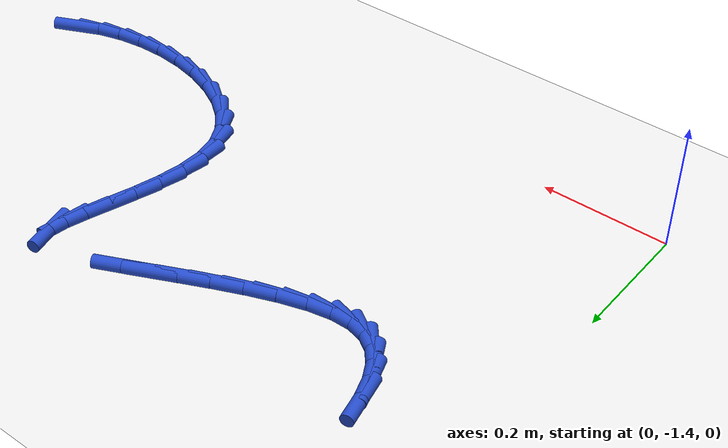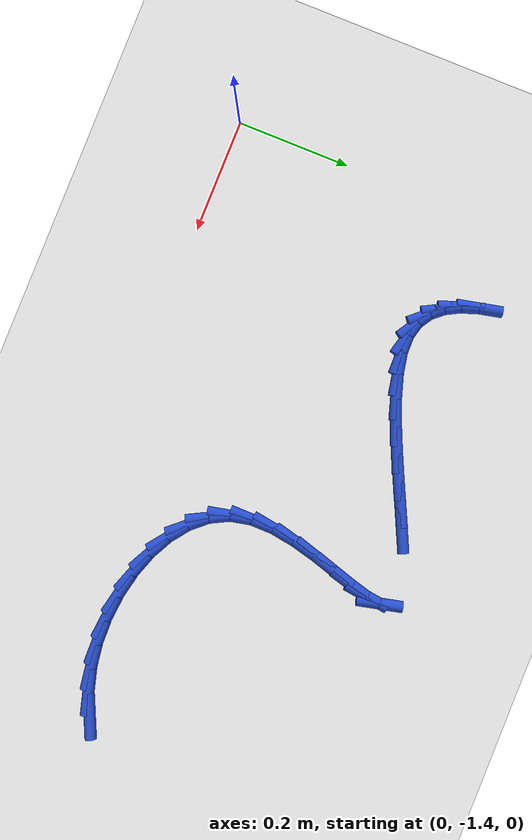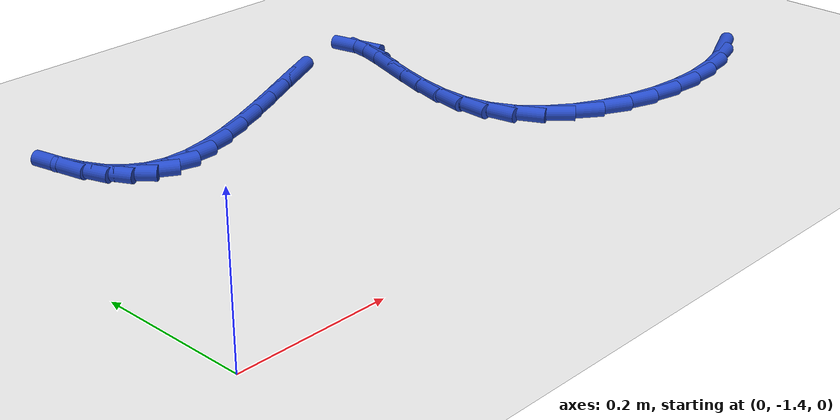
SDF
<sdf version="1.6">
 <world name="default">
  <model name="ground_plane">
   <static>1</static>
   <link name="link">
    <collision name="collision">
     <geometry><plane><normal>0 0 1</normal><size>100 100</size></plane></geometry>
     <surface><friction><ode><mu>100</mu><mu2>50</mu2></ode></friction></surface>
    </collision>
    <visual name="visual">
     <cast_shadows>0</cast_shadows>
     <geometry><plane><normal>0 0 1</normal><size>100 100</size></plane></geometry>
     <material>
      <script><uri>file://media/materials/scripts/gazebo.material</uri><name>Gazebo/WhiteGlow</name></script>
     </material>
    </visual>
   </link>
  </model>
  <model name="line">
   <link name="link_208">
    <pose>1.0401108491345001 -1.257475766100398 0.01 0 1.57 0.4323601124103347</pose>
    <collision name="collision">
     <geometry><cylinder><radius>0.01</radius><length>0.08</length></cylinder></geometry>
    </collision>
    <visual name="visual">
     <material>
      <script><name>Gazebo/Blue</name><uri>file://media/materials/scripts/gazebo.material</uri></script>
     </material>
     <geometry><cylinder><radius>0.01</radius><length>0.08</length></cylinder></geometry>
    </visual>
   </link>
   <link name="link_209">
    <pose>1.0031385572865816 -1.2745377632468415 0.01 0 1.57 0.2753263226925777</pose>
    <collision name="collision">
     <geometry><cylinder><radius>0.01</radius><length>0.08</length></cylinder></geometry>
    </collision>
    <visual name="visual">
     <material>
      <script><name>Gazebo/Blue</name><uri>file://media/materials/scripts/gazebo.material</uri></script>
     </material>
     <geometry><cylinder><radius>0.01</radius><length>0.08</length></cylinder></geometry>
    </visual>
   </link>
   <link name="link_210">
    <pose>0.9622748384906202 -1.2860818025622593 0.01 0 1.57 0.14062552667483713</pose>
    <collision name="collision">
     <geometry><cylinder><radius>0.01</radius><length>0.08</length></cylinder></geometry>
    </collision>
    <visual name="visual">
     <material>
      <script><name>Gazebo/Blue</name><uri>file://media/materials/scripts/gazebo.material</uri></script>
     </material>
     <geometry><cylinder><radius>0.01</radius><length>0.08</length></cylinder></geometry>
    </visual>
   </link>
   <link name="link_211">
    <pose>0.9188326528965219 -1.2922314740246053 0.01 0 1.57 0.01965613408793766</pose>
    <collision name="collision">
     <geometry><cylinder><radius>0.01</radius><length>0.08</length></cylinder></geometry>
    </collision>
    <visual name="visual">
     <material>
      <script><name>Gazebo/Blue</name><uri>file://media/materials/scripts/gazebo.material</uri></script>
     </material>
     <geometry><cylinder><radius>0.01</radius><length>0.08</length></cylinder></geometry>
    </visual>
   </link>
   <link name="link_212">
    <pose>0.8741249606541979 -1.2931103676118305 0.01 0 1.57 -0.09528317557874696</pose>
    <collision name="collision">
     <geometry><cylinder><radius>0.01</radius><length>0.08</length></cylinder></geometry>
    </collision>
    <visual name="visual">
     <material>
      <script><name>Gazebo/Blue</name><uri>file://media/materials/scripts/gazebo.material</uri></script>
     </material>
     <geometry><cylinder><radius>0.01</radius><length>0.08</length></cylinder></geometry>
    </visual>
   </link>
   <link name="link_213">
    <pose>0.829464721913554 -1.2888420733018882 0.01 0 1.57 -0.21138827697276452</pose>
    <collision name="collision">
     <geometry><cylinder><radius>0.01</radius><length>0.08</length></cylinder></geometry>
    </collision>
    <visual name="visual">
     <material>
      <script><name>Gazebo/Blue</name><uri>file://media/materials/scripts/gazebo.material</uri></script>
     </material>
     <geometry><cylinder><radius>0.01</radius><length>0.08</length></cylinder></geometry>
    </visual>
   </link>
   <link name="link_214">
    <pose>0.7861648968245017 -1.27955018107273 0.01 0 1.57 -0.3360747841376908</pose>
    <collision name="collision">
     <geometry><cylinder><radius>0.01</radius><length>0.08</length></cylinder></geometry>
    </collision>
    <visual name="visual">
     <material>
      <script><name>Gazebo/Blue</name><uri>file://media/materials/scripts/gazebo.material</uri></script>
     </material>
     <geometry><cylinder><radius>0.01</radius><length>0.08</length></cylinder></geometry>
    </visual>
   </link>
   <link name="link_215">
    <pose>0.7455384455369479 -1.265358280902309 0.01 0 1.57 -0.4777013099400728</pose>
    <collision name="collision">
     <geometry><cylinder><radius>0.01</radius><length>0.08</length></cylinder></geometry>
    </collision>
    <visual name="visual">
     <material>
      <script><name>Gazebo/Blue</name><uri>file://media/materials/scripts/gazebo.material</uri></script>
     </material>
     <geometry><cylinder><radius>0.01</radius><length>0.08</length></cylinder></geometry>
    </visual>
   </link>
   <link name="link_216">
    <pose>0.7088983282008006 -1.246389962768577 0.01 0 1.57 -0.6458561086167712</pose>
    <collision name="collision">
     <geometry><cylinder><radius>0.01</radius><length>0.08</length></cylinder></geometry>
    </collision>
    <visual name="visual">
     <material>
      <script><name>Gazebo/Blue</name><uri>file://media/materials/scripts/gazebo.material</uri></script>
     </material>
     <geometry><cylinder><radius>0.01</radius><length>0.08</length></cylinder></geometry>
    </visual>
   </link>
   <link name="link_217">
    <pose>0.6775575049659701 -1.2227688166494874 0.01 0 1.57 -0.8500184083948846</pose>
    <collision name="collision">
     <geometry><cylinder><radius>0.01</radius><length>0.08</length></cylinder></geometry>
    </collision>
    <visual name="visual">
     <material>
      <script><name>Gazebo/Blue</name><uri>file://media/materials/scripts/gazebo.material</uri></script>
     </material>
     <geometry><cylinder><radius>0.01</radius><length>0.08</length></cylinder></geometry>
    </visual>
   </link>
   <link name="link_218">
    <pose>0.6528289359823636 -1.1946184325229914 0.01 0 1.57 -1.0943230567491988</pose>
    <collision name="collision">
     <geometry><cylinder><radius>0.01</radius><length>0.08</length></cylinder></geometry>
    </collision>
    <visual name="visual">
     <material>
      <script><name>Gazebo/Blue</name><uri>file://media/materials/scripts/gazebo.material</uri></script>
     </material>
     <geometry><cylinder><radius>0.01</radius><length>0.08</length></cylinder></geometry>
    </visual>
   </link>
   <link name="link_219">
    <pose>0.6360255813998907 -1.1620624003670426 0.01 0 1.57 -1.363236934674332</pose>
    <collision name="collision">
     <geometry><cylinder><radius>0.01</radius><length>0.08</length></cylinder></geometry>
    </collision>
    <visual name="visual">
     <material>
      <script><name>Gazebo/Blue</name><uri>file://media/materials/scripts/gazebo.material</uri></script>
     </material>
     <geometry><cylinder><radius>0.01</radius><length>0.08</length></cylinder></geometry>
    </visual>
   </link>
   <link name="link_220">
    <pose>0.6282836102452093 -1.1252995566227846 0.01 0 1.57 1.5599939760546098</pose>
    <collision name="collision">
     <geometry><cylinder><radius>0.01</radius><length>0.08</length></cylinder></geometry>
    </collision>
    <visual name="visual">
     <material>
      <script><name>Gazebo/Blue</name><uri>file://media/materials/scripts/gazebo.material</uri></script>
     </material>
     <geometry><cylinder><radius>0.01</radius><length>0.08</length></cylinder></geometry>
    </visual>
   </link>
   <link name="link_221">
    <pose>0.6287147398085303 -1.0853903920399748 0.01 0 1.57 1.4170131993038377</pose>
    <collision name="collision">
     <geometry><cylinder><radius>0.01</radius><length>0.08</length></cylinder></geometry>
    </collision>
    <visual name="visual">
     <material>
      <script><name>Gazebo/Blue</name><uri>file://media/materials/scripts/gazebo.material</uri></script>
     </material>
     <geometry><cylinder><radius>0.01</radius><length>0.08</length></cylinder></geometry>
    </visual>
   </link>
   <link name="link_222">
    <pose>0.6351390417521358 -1.0439451521491119 0.01 0 1.57 1.3286386157848942</pose>
    <collision name="collision">
     <geometry><cylinder><radius>0.01</radius><length>0.08</length></cylinder></geometry>
    </collision>
    <visual name="visual">
     <material>
      <script><name>Gazebo/Blue</name><uri>file://media/materials/scripts/gazebo.material</uri></script>
     </material>
     <geometry><cylinder><radius>0.01</radius><length>0.08</length></cylinder></geometry>
    </visual>
   </link>
   <link name="link_223">
    <pose>0.6453557004009113 -1.0025829726231215 0.01 0 1.57 1.2814180082380924</pose>
    <collision name="collision">
     <geometry><cylinder><radius>0.01</radius><length>0.08</length></cylinder></geometry>
    </collision>
    <visual name="visual">
     <material>
      <script><name>Gazebo/Blue</name><uri>file://media/materials/scripts/gazebo.material</uri></script>
     </material>
     <geometry><cylinder><radius>0.01</radius><length>0.08</length></cylinder></geometry>
    </visual>
   </link>
   <link name="link_224">
    <pose>0.6571639000797423 -0.9629229891349237 0.01 0 1.57 1.2718499490930224</pose>
    <collision name="collision">
     <geometry><cylinder><radius>0.01</radius><length>0.08</length></cylinder></geometry>
    </collision>
    <visual name="visual">
     <material>
      <script><name>Gazebo/Blue</name><uri>file://media/materials/scripts/gazebo.material</uri></script>
     </material>
     <geometry><cylinder><radius>0.01</radius><length>0.08</length></cylinder></geometry>
    </visual>
   </link>
   <link name="link_225">
    <pose>0.6683628251135134 -0.9265843373574442 0.01 0 1.57 1.3097186729000427</pose>
    <collision name="collision">
     <geometry><cylinder><radius>0.01</radius><length>0.08</length></cylinder></geometry>
    </collision>
    <visual name="visual">
     <material>
      <script><name>Gazebo/Blue</name><uri>file://media/materials/scripts/gazebo.material</uri></script>
     </material>
     <geometry><cylinder><radius>0.01</radius><length>0.08</length></cylinder></geometry>
    </visual>
   </link>
   <link name="link_226">
    <pose>0.6767516598271108 -0.8951861529636047 0.01 0 1.57 1.4356303061305633</pose>
    <collision name="collision">
     <geometry><cylinder><radius>0.01</radius><length>0.08</length></cylinder></geometry>
    </collision>
    <visual name="visual">
     <material>
      <script><name>Gazebo/Blue</name><uri>file://media/materials/scripts/gazebo.material</uri></script>
     </material>
     <geometry><cylinder><radius>0.01</radius><length>0.08</length></cylinder></geometry>
    </visual>
   </link>
   <link name="link_227">
    <pose>0.6801295885454195 -0.870347571626327 0.01 0 1.57 -1.3449500570007056</pose>
    <collision name="collision">
     <geometry><cylinder><radius>0.01</radius><length>0.08</length></cylinder></geometry>
    </collision>
    <visual name="visual">
     <material>
      <script><name>Gazebo/Blue</name><uri>file://media/materials/scripts/gazebo.material</uri></script>
     </material>
     <geometry><cylinder><radius>0.01</radius><length>0.08</length></cylinder></geometry>
    </visual>
   </link>
   <link name="link_233">
    <pose>0.5495921983297879 -0.8808121457572274 0.01 0 1.57 0.44059245635427696</pose>
    <collision name="collision">
     <geometry><cylinder><radius>0.01</radius><length>0.08</length></cylinder></geometry>
    </collision>
    <visual name="visual">
     <material>
      <script><name>Gazebo/Blue</name><uri>file://media/materials/scripts/gazebo.material</uri></script>
     </material>
     <geometry><cylinder><radius>0.01</radius><length>0.08</length></cylinder></geometry>
    </visual>
   </link>
   <link name="link_234">
    <pose>0.5101568812530213 -0.8994060749928907 0.01 0 1.57 0.44703834831878464</pose>
    <collision name="collision">
     <geometry><cylinder><radius>0.01</radius><length>0.08</length></cylinder></geometry>
    </collision>
    <visual name="visual">
     <material>
      <script><name>Gazebo/Blue</name><uri>file://media/materials/scripts/gazebo.material</uri></script>
     </material>
     <geometry><cylinder><radius>0.01</radius><length>0.08</length></cylinder></geometry>
    </visual>
   </link>
   <link name="link_235">
    <pose>0.468587972178433 -0.9193345235682091 0.01 0 1.57 0.43801581811739604</pose>
    <collision name="collision">
     <geometry><cylinder><radius>0.01</radius><length>0.08</length></cylinder></geometry>
    </collision>
    <visual name="visual">
     <material>
      <script><name>Gazebo/Blue</name><uri>file://media/materials/scripts/gazebo.material</uri></script>
     </material>
     <geometry><cylinder><radius>0.01</radius><length>0.08</length></cylinder></geometry>
    </visual>
   </link>
   <link name="link_236">
    <pose>0.42598444786396994 -0.9392882608631726 0.01 0 1.57 0.4135722420255083</pose>
    <collision name="collision">
     <geometry><cylinder><radius>0.01</radius><length>0.08</length></cylinder></geometry>
    </collision>
    <visual name="visual">
     <material>
      <script><name>Gazebo/Blue</name><uri>file://media/materials/scripts/gazebo.material</uri></script>
     </material>
     <geometry><cylinder><radius>0.01</radius><length>0.08</length></cylinder></geometry>
    </visual>
   </link>
   <link name="link_237">
    <pose>0.38344528506758263 -0.9579580562577703 0.01 0 1.57 0.37059785647068616</pose>
    <collision name="collision">
     <geometry><cylinder><radius>0.01</radius><length>0.08</length></cylinder></geometry>
    </collision>
    <visual name="visual">
     <material>
      <script><name>Gazebo/Blue</name><uri>file://media/materials/scripts/gazebo.material</uri></script>
     </material>
     <geometry><cylinder><radius>0.01</radius><length>0.08</length></cylinder></geometry>
    </visual>
   </link>
   <link name="link_238">
    <pose>0.3420694605472169 -0.974034679131993 0.01 0 1.57 0.3017489344333398</pose>
    <collision name="collision">
     <geometry><cylinder><radius>0.01</radius><length>0.08</length></cylinder></geometry>
    </collision>
    <visual name="visual">
     <material>
      <script><name>Gazebo/Blue</name><uri>file://media/materials/scripts/gazebo.material</uri></script>
     </material>
     <geometry><cylinder><radius>0.01</radius><length>0.08</length></cylinder></geometry>
    </visual>
   </link>
   <link name="link_239">
    <pose>0.3029559510608233 -0.98620889886583 0.01 0 1.57 0.19233815496118745</pose>
    <collision name="collision">
     <geometry><cylinder><radius>0.01</radius><length>0.08</length></cylinder></geometry>
    </collision>
    <visual name="visual">
     <material>
      <script><name>Gazebo/Blue</name><uri>file://media/materials/scripts/gazebo.material</uri></script>
     </material>
     <geometry><cylinder><radius>0.01</radius><length>0.08</length></cylinder></geometry>
    </visual>
   </link>
   <link name="link_240">
    <pose>0.26720373336634795 -0.9931714848392721 0.01 0 1.57 0.014191288134657074</pose>
    <collision name="collision">
     <geometry><cylinder><radius>0.01</radius><length>0.08</length></cylinder></geometry>
    </collision>
    <visual name="visual">
     <material>
      <script><name>Gazebo/Blue</name><uri>file://media/materials/scripts/gazebo.material</uri></script>
     </material>
     <geometry><cylinder><radius>0.01</radius><length>0.08</length></cylinder></geometry>
    </visual>
   </link>
   <link name="link_241">
    <pose>0.23590982607384942 -0.993615615509805 0.01 0 1.57 -0.25518716888883386</pose>
    <collision name="collision">
     <geometry><cylinder><radius>0.01</radius><length>0.08</length></cylinder></geometry>
    </collision>
    <visual name="visual">
     <material>
      <script><name>Gazebo/Blue</name><uri>file://media/materials/scripts/gazebo.material</uri></script>
     </material>
     <geometry><cylinder><radius>0.01</radius><length>0.08</length></cylinder></geometry>
    </visual>
   </link>
   <link name="link_242">
    <pose>0.2097242107156129 -0.986784451779386 0.01 0 1.57 -0.5658041432309141</pose>
    <collision name="collision">
     <geometry><cylinder><radius>0.01</radius><length>0.08</length></cylinder></geometry>
    </collision>
    <visual name="visual">
     <material>
      <script><name>Gazebo/Blue</name><uri>file://media/materials/scripts/gazebo.material</uri></script>
     </material>
     <geometry><cylinder><radius>0.01</radius><length>0.08</length></cylinder></geometry>
    </visual>
   </link>
   <link name="link_243">
    <pose>0.18828332452145405 -0.9731681016171723 0.01 0 1.57 -0.8540572544370034</pose>
    <collision name="collision">
     <geometry><cylinder><radius>0.01</radius><length>0.08</length></cylinder></geometry>
    </collision>
    <visual name="visual">
     <material>
      <script><name>Gazebo/Blue</name><uri>file://media/materials/scripts/gazebo.material</uri></script>
     </material>
     <geometry><cylinder><radius>0.01</radius><length>0.08</length></cylinder></geometry>
    </visual>
   </link>
   <link name="link_244">
    <pose>0.1710839278650606 -0.953428515156175 0.01 0 1.57 -1.0802002962543078</pose>
    <collision name="collision">
     <geometry><cylinder><radius>0.01</radius><length>0.08</length></cylinder></geometry>
    </collision>
    <visual name="visual">
     <material>
      <script><name>Gazebo/Blue</name><uri>file://media/materials/scripts/gazebo.material</uri></script>
     </material>
     <geometry><cylinder><radius>0.01</radius><length>0.08</length></cylinder></geometry>
    </visual>
   </link>
   <link name="link_245">
    <pose>0.1576227811201228 -0.9282276425294079 0.01 0 1.57 -1.2422792127234605</pose>
    <collision name="collision">
     <geometry><cylinder><radius>0.01</radius><length>0.08</length></cylinder></geometry>
    </collision>
    <visual name="visual">
     <material>
      <script><name>Gazebo/Blue</name><uri>file://media/materials/scripts/gazebo.material</uri></script>
     </material>
     <geometry><cylinder><radius>0.01</radius><length>0.08</length></cylinder></geometry>
    </visual>
   </link>
   <link name="link_246">
    <pose>0.14739664466032906 -0.8982274338698829 0.01 0 1.57 -1.3546904649876097</pose>
    <collision name="collision">
     <geometry><cylinder><radius>0.01</radius><length>0.08</length></cylinder></geometry>
    </collision>
    <visual name="visual">
     <material>
      <script><name>Gazebo/Blue</name><uri>file://media/materials/scripts/gazebo.material</uri></script>
     </material>
     <geometry><cylinder><radius>0.01</radius><length>0.08</length></cylinder></geometry>
    </visual>
   </link>
  </model>
 </world>
</sdf>
